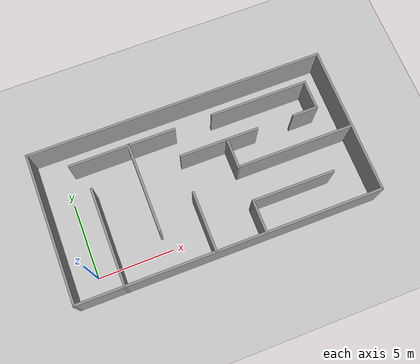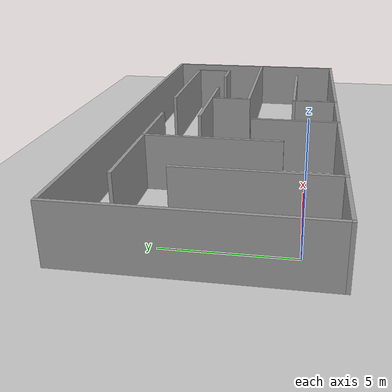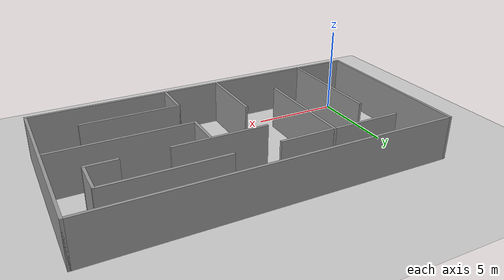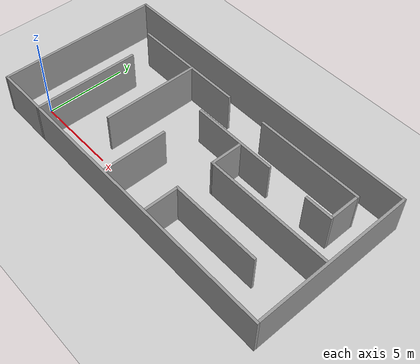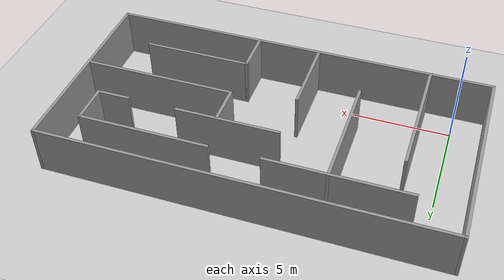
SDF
<sdf version="1.7">
 <world name="default">
  <light name="sun" type="directional">
   <pose>0 0 10 0 -0 0</pose>
   <diffuse>0.8 0.8 0.8 1</diffuse>
   <specular>0.2 0.2 0.2 1</specular>
   <attenuation>
    <range>1000</range>
    <constant>0.9</constant>
    <linear>0.01</linear>
    <quadratic>0.001</quadratic>
   </attenuation>
   <direction>-0.5 0.1 -0.9</direction>
   <spot><inner_angle>0</inner_angle><outer_angle>0</outer_angle><falloff>0</falloff></spot>
  </light>
  <model name="ground_plane">
   <static>1</static>
   <link name="link">
    <collision name="collision">
     <geometry><plane><normal>0 0 1</normal><size>100 100</size></plane></geometry>
     <surface>
      <contact><collide_bitmask>65535</collide_bitmask></contact>
      <friction><ode><mu>100</mu><mu2>50</mu2></ode></friction>
     </surface>
    </collision>
    <visual name="visual">
     <cast_shadows>0</cast_shadows>
     <geometry><plane><normal>0 0 1</normal><size>100 100</size></plane></geometry>
     <material>
      <script><uri>file://media/materials/scripts/gazebo.material</uri><name>Gazebo/Grey</name></script>
     </material>
    </visual>
   </link>
  </model>
  <gravity>0 0 -9.8</gravity>
  <magnetic_field>6e-06 2.3e-05 -4.2e-05</magnetic_field>
  <atmosphere type="adiabatic"/>
  <physics type="ode">
   <max_step_size>0.001</max_step_size>
   <real_time_factor>1</real_time_factor>
   <real_time_update_rate>1000</real_time_update_rate>
  </physics>
  <scene><ambient>0.4 0.4 0.4 1</ambient><background>0.7 0.7 0.7 1</background><shadows>1</shadows></scene>
  <audio><device>default</device></audio>
  <spherical_coordinates>
   <surface_model>EARTH_WGS84</surface_model>
   <latitude_deg>0</latitude_deg>
   <longitude_deg>0</longitude_deg>
   <elevation>0</elevation>
   <heading_deg>0</heading_deg>
  </spherical_coordinates>
  <model name="room1">
   <link name="Wall_0">
    <pose>0 4.5075 0 0 -0 0</pose>
    <visual name="Wall_0_Visual">
     <pose>0 0 1.25 0 -0 0</pose>
     <geometry><box><size>20 0.15 2.5</size></box></geometry>
     <material>
      <script><uri>file://media/materials/scripts/gazebo.material</uri><name>Gazebo/Grey</name></script>
      <ambient>1 1 1 1</ambient>
      <shader type="pixel"/>
     </material>
     <meta><layer>0</layer></meta>
    </visual>
    <collision name="Wall_0_Collision">
     <pose>0 0 1.25 0 -0 0</pose>
     <geometry><box><size>20 0.15 2.5</size></box></geometry>
     <surface>
      <friction>
       <ode><mu>1</mu><mu2>1</mu2><fdir1>0 0 0</fdir1><slip1>0</slip1><slip2>0</slip2></ode>
       <torsional>
        <coefficient>1</coefficient>
        <patch_radius>0</patch_radius>
        <surface_radius>0</surface_radius>
        <use_patch_radius>1</use_patch_radius>
        <ode><slip>0</slip></ode>
       </torsional>
      </friction>
      <bounce><restitution_coefficient>0</restitution_coefficient><threshold>1e+06</threshold></bounce>
      <contact>
       <collide_without_contact>0</collide_without_contact>
       <collide_without_contact_bitmask>1</collide_without_contact_bitmask>
       <collide_bitmask>1</collide_bitmask>
       <ode>
        <soft_cfm>0</soft_cfm>
        <soft_erp>0.2</soft_erp>
        <kp>1e+13</kp>
        <kd>1</kd>
        <max_vel>0.01</max_vel>
        <min_depth>0</min_depth>
       </ode>
       <bullet>
        <split_impulse>1</split_impulse>
        <split_impulse_penetration_threshold>-0.01</split_impulse_penetration_threshold>
        <soft_cfm>0</soft_cfm>
        <soft_erp>0.2</soft_erp>
        <kp>1e+13</kp>
        <kd>1</kd>
       </bullet>
      </contact>
     </surface>
    </collision>
   </link>
   <link name="Wall_1">
    <pose>9.925 -0.4175 0 0 0 -1.5708</pose>
    <visual name="Wall_1_Visual">
     <pose>0 0 1.25 0 -0 0</pose>
     <geometry><box><size>10 0.15 2.5</size></box></geometry>
     <material>
      <script><uri>file://media/materials/scripts/gazebo.material</uri><name>Gazebo/Grey</name></script>
      <ambient>1 1 1 1</ambient>
      <shader type="pixel"/>
     </material>
     <meta><layer>0</layer></meta>
    </visual>
    <collision name="Wall_1_Collision">
     <pose>0 0 1.25 0 -0 0</pose>
     <geometry><box><size>10 0.15 2.5</size></box></geometry>
     <surface>
      <friction>
       <ode><mu>1</mu><mu2>1</mu2><fdir1>0 0 0</fdir1><slip1>0</slip1><slip2>0</slip2></ode>
       <torsional>
        <coefficient>1</coefficient>
        <patch_radius>0</patch_radius>
        <surface_radius>0</surface_radius>
        <use_patch_radius>1</use_patch_radius>
        <ode><slip>0</slip></ode>
       </torsional>
      </friction>
      <bounce><restitution_coefficient>0</restitution_coefficient><threshold>1e+06</threshold></bounce>
      <contact>
       <collide_without_contact>0</collide_without_contact>
       <collide_without_contact_bitmask>1</collide_without_contact_bitmask>
       <collide_bitmask>1</collide_bitmask>
       <ode>
        <soft_cfm>0</soft_cfm>
        <soft_erp>0.2</soft_erp>
        <kp>1e+13</kp>
        <kd>1</kd>
        <max_vel>0.01</max_vel>
        <min_depth>0</min_depth>
       </ode>
       <bullet>
        <split_impulse>1</split_impulse>
        <split_impulse_penetration_threshold>-0.01</split_impulse_penetration_threshold>
        <soft_cfm>0</soft_cfm>
        <soft_erp>0.2</soft_erp>
        <kp>1e+13</kp>
        <kd>1</kd>
       </bullet>
      </contact>
     </surface>
    </collision>
   </link>
   <link name="Wall_10">
    <pose>1.665 1.0675 0 0 -0 3.14159</pose>
    <visual name="Wall_10_Visual">
     <pose>0 0 1.25 0 -0 0</pose>
     <geometry><box><size>5.25 0.15 2.5</size></box></geometry>
     <material>
      <script><uri>file://media/materials/scripts/gazebo.material</uri><name>Gazebo/Grey</name></script>
      <ambient>1 1 1 1</ambient>
      <shader type="pixel"/>
     </material>
     <meta><layer>0</layer></meta>
    </visual>
    <collision name="Wall_10_Collision">
     <pose>0 0 1.25 0 -0 0</pose>
     <geometry><box><size>5.25 0.15 2.5</size></box></geometry>
     <surface>
      <friction>
       <ode><mu>1</mu><mu2>1</mu2><fdir1>0 0 0</fdir1><slip1>0</slip1><slip2>0</slip2></ode>
       <torsional>
        <coefficient>1</coefficient>
        <patch_radius>0</patch_radius>
        <surface_radius>0</surface_radius>
        <use_patch_radius>1</use_patch_radius>
        <ode><slip>0</slip></ode>
       </torsional>
      </friction>
      <bounce><restitution_coefficient>0</restitution_coefficient><threshold>1e+06</threshold></bounce>
      <contact>
       <collide_without_contact>0</collide_without_contact>
       <collide_without_contact_bitmask>1</collide_without_contact_bitmask>
       <collide_bitmask>1</collide_bitmask>
       <ode>
        <soft_cfm>0</soft_cfm>
        <soft_erp>0.2</soft_erp>
        <kp>1e+13</kp>
        <kd>1</kd>
        <max_vel>0.01</max_vel>
        <min_depth>0</min_depth>
       </ode>
       <bullet>
        <split_impulse>1</split_impulse>
        <split_impulse_penetration_threshold>-0.01</split_impulse_penetration_threshold>
        <soft_cfm>0</soft_cfm>
        <soft_erp>0.2</soft_erp>
        <kp>1e+13</kp>
        <kd>1</kd>
       </bullet>
      </contact>
     </surface>
    </collision>
   </link>
   <link name="Wall_12">
    <pose>-3.745 -0.0075 0 0 0 -1.5708</pose>
    <visual name="Wall_12_Visual">
     <pose>0 0 1.25 0 -0 0</pose>
     <geometry><box><size>6 0.15 2.5</size></box></geometry>
     <material>
      <script><uri>file://media/materials/scripts/gazebo.material</uri><name>Gazebo/Grey</name></script>
      <ambient>1 1 1 1</ambient>
      <shader type="pixel"/>
     </material>
     <meta><layer>0</layer></meta>
    </visual>
    <collision name="Wall_12_Collision">
     <pose>0 0 1.25 0 -0 0</pose>
     <geometry><box><size>6 0.15 2.5</size></box></geometry>
     <surface>
      <friction>
       <ode><mu>1</mu><mu2>1</mu2><fdir1>0 0 0</fdir1><slip1>0</slip1><slip2>0</slip2></ode>
       <torsional>
        <coefficient>1</coefficient>
        <patch_radius>0</patch_radius>
        <surface_radius>0</surface_radius>
        <use_patch_radius>1</use_patch_radius>
        <ode><slip>0</slip></ode>
       </torsional>
      </friction>
      <bounce><restitution_coefficient>0</restitution_coefficient><threshold>1e+06</threshold></bounce>
      <contact>
       <collide_without_contact>0</collide_without_contact>
       <collide_without_contact_bitmask>1</collide_without_contact_bitmask>
       <collide_bitmask>1</collide_bitmask>
       <ode>
        <soft_cfm>0</soft_cfm>
        <soft_erp>0.2</soft_erp>
        <kp>1e+13</kp>
        <kd>1</kd>
        <max_vel>0.01</max_vel>
        <min_depth>0</min_depth>
       </ode>
       <bullet>
        <split_impulse>1</split_impulse>
        <split_impulse_penetration_threshold>-0.01</split_impulse_penetration_threshold>
        <soft_cfm>0</soft_cfm>
        <soft_erp>0.2</soft_erp>
        <kp>1e+13</kp>
        <kd>1</kd>
       </bullet>
      </contact>
     </surface>
    </collision>
   </link>
   <link name="Wall_14">
    <pose>-6.805 -2.1775 0 0 0 -1.5708</pose>
    <visual name="Wall_14_Visual">
     <pose>0 0 1.25 0 -0 0</pose>
     <geometry><box><size>6.5 0.15 2.5</size></box></geometry>
     <material>
      <script><uri>file://media/materials/scripts/gazebo.material</uri><name>Gazebo/Grey</name></script>
      <ambient>1 1 1 1</ambient>
      <shader type="pixel"/>
     </material>
     <meta><layer>0</layer></meta>
    </visual>
    <collision name="Wall_14_Collision">
     <pose>0 0 1.25 0 -0 0</pose>
     <geometry><box><size>6.5 0.15 2.5</size></box></geometry>
     <surface>
      <friction>
       <ode><mu>1</mu><mu2>1</mu2><fdir1>0 0 0</fdir1><slip1>0</slip1><slip2>0</slip2></ode>
       <torsional>
        <coefficient>1</coefficient>
        <patch_radius>0</patch_radius>
        <surface_radius>0</surface_radius>
        <use_patch_radius>1</use_patch_radius>
        <ode><slip>0</slip></ode>
       </torsional>
      </friction>
      <bounce><restitution_coefficient>0</restitution_coefficient><threshold>1e+06</threshold></bounce>
      <contact>
       <collide_without_contact>0</collide_without_contact>
       <collide_without_contact_bitmask>1</collide_without_contact_bitmask>
       <collide_bitmask>1</collide_bitmask>
       <ode>
        <soft_cfm>0</soft_cfm>
        <soft_erp>0.2</soft_erp>
        <kp>1e+13</kp>
        <kd>1</kd>
        <max_vel>0.01</max_vel>
        <min_depth>0</min_depth>
       </ode>
       <bullet>
        <split_impulse>1</split_impulse>
        <split_impulse_penetration_threshold>-0.01</split_impulse_penetration_threshold>
        <soft_cfm>0</soft_cfm>
        <soft_erp>0.2</soft_erp>
        <kp>1e+13</kp>
        <kd>1</kd>
       </bullet>
      </contact>
     </surface>
    </collision>
   </link>
   <link name="Wall_16">
    <pose>2.195 0.0325 0 0 0 -1.5708</pose>
    <visual name="Wall_16_Visual">
     <pose>0 0 1.25 0 -0 0</pose>
     <geometry><box><size>2 0.15 2.5</size></box></geometry>
     <material>
      <script><uri>file://media/materials/scripts/gazebo.material</uri><name>Gazebo/Grey</name></script>
      <ambient>1 1 1 1</ambient>
      <shader type="pixel"/>
     </material>
     <meta><layer>0</layer></meta>
    </visual>
    <collision name="Wall_16_Collision">
     <pose>0 0 1.25 0 -0 0</pose>
     <geometry><box><size>2 0.15 2.5</size></box></geometry>
     <surface>
      <friction>
       <ode><mu>1</mu><mu2>1</mu2><fdir1>0 0 0</fdir1><slip1>0</slip1><slip2>0</slip2></ode>
       <torsional>
        <coefficient>1</coefficient>
        <patch_radius>0</patch_radius>
        <surface_radius>0</surface_radius>
        <use_patch_radius>1</use_patch_radius>
        <ode><slip>0</slip></ode>
       </torsional>
      </friction>
      <bounce><restitution_coefficient>0</restitution_coefficient><threshold>1e+06</threshold></bounce>
      <contact>
       <collide_without_contact>0</collide_without_contact>
       <collide_without_contact_bitmask>1</collide_without_contact_bitmask>
       <collide_bitmask>1</collide_bitmask>
       <ode>
        <soft_cfm>0</soft_cfm>
        <soft_erp>0.2</soft_erp>
        <kp>1e+13</kp>
        <kd>1</kd>
        <max_vel>0.01</max_vel>
        <min_depth>0</min_depth>
       </ode>
       <bullet>
        <split_impulse>1</split_impulse>
        <split_impulse_penetration_threshold>-0.01</split_impulse_penetration_threshold>
        <soft_cfm>0</soft_cfm>
        <soft_erp>0.2</soft_erp>
        <kp>1e+13</kp>
        <kd>1</kd>
       </bullet>
      </contact>
     </surface>
    </collision>
   </link>
   <link name="Wall_18">
    <pose>2.225 -4.2825 0 0 0 -1.5708</pose>
    <visual name="Wall_18_Visual">
     <pose>0 0 1.25 0 -0 0</pose>
     <geometry><box><size>2.25 0.15 2.5</size></box></geometry>
     <material>
      <script><uri>file://media/materials/scripts/gazebo.material</uri><name>Gazebo/Grey</name></script>
      <ambient>1 1 1 1</ambient>
      <shader type="pixel"/>
     </material>
     <meta><layer>0</layer></meta>
    </visual>
    <collision name="Wall_18_Collision">
     <pose>0 0 1.25 0 -0 0</pose>
     <geometry><box><size>2.25 0.15 2.5</size></box></geometry>
     <surface>
      <friction>
       <ode><mu>1</mu><mu2>1</mu2><fdir1>0 0 0</fdir1><slip1>0</slip1><slip2>0</slip2></ode>
       <torsional>
        <coefficient>1</coefficient>
        <patch_radius>0</patch_radius>
        <surface_radius>0</surface_radius>
        <use_patch_radius>1</use_patch_radius>
        <ode><slip>0</slip></ode>
       </torsional>
      </friction>
      <bounce><restitution_coefficient>0</restitution_coefficient><threshold>1e+06</threshold></bounce>
      <contact>
       <collide_without_contact>0</collide_without_contact>
       <collide_without_contact_bitmask>1</collide_without_contact_bitmask>
       <collide_bitmask>1</collide_bitmask>
       <ode>
        <soft_cfm>0</soft_cfm>
        <soft_erp>0.2</soft_erp>
        <kp>1e+13</kp>
        <kd>1</kd>
        <max_vel>0.01</max_vel>
        <min_depth>0</min_depth>
       </ode>
       <bullet>
        <split_impulse>1</split_impulse>
        <split_impulse_penetration_threshold>-0.01</split_impulse_penetration_threshold>
        <soft_cfm>0</soft_cfm>
        <soft_erp>0.2</soft_erp>
        <kp>1e+13</kp>
        <kd>1</kd>
       </bullet>
      </contact>
     </surface>
    </collision>
   </link>
   <link name="Wall_2">
    <pose>0 -5.3425 0 0 -0 3.14159</pose>
    <visual name="Wall_2_Visual">
     <pose>0 0 1.25 0 -0 0</pose>
     <geometry><box><size>20 0.15 2.5</size></box></geometry>
     <material>
      <script><uri>file://media/materials/scripts/gazebo.material</uri><name>Gazebo/Grey</name></script>
      <ambient>1 1 1 1</ambient>
      <shader type="pixel"/>
     </material>
     <meta><layer>0</layer></meta>
    </visual>
    <collision name="Wall_2_Collision">
     <pose>0 0 1.25 0 -0 0</pose>
     <geometry><box><size>20 0.15 2.5</size></box></geometry>
     <surface>
      <friction>
       <ode><mu>1</mu><mu2>1</mu2><fdir1>0 0 0</fdir1><slip1>0</slip1><slip2>0</slip2></ode>
       <torsional>
        <coefficient>1</coefficient>
        <patch_radius>0</patch_radius>
        <surface_radius>0</surface_radius>
        <use_patch_radius>1</use_patch_radius>
        <ode><slip>0</slip></ode>
       </torsional>
      </friction>
      <bounce><restitution_coefficient>0</restitution_coefficient><threshold>1e+06</threshold></bounce>
      <contact>
       <collide_without_contact>0</collide_without_contact>
       <collide_without_contact_bitmask>1</collide_without_contact_bitmask>
       <collide_bitmask>1</collide_bitmask>
       <ode>
        <soft_cfm>0</soft_cfm>
        <soft_erp>0.2</soft_erp>
        <kp>1e+13</kp>
        <kd>1</kd>
        <max_vel>0.01</max_vel>
        <min_depth>0</min_depth>
       </ode>
       <bullet>
        <split_impulse>1</split_impulse>
        <split_impulse_penetration_threshold>-0.01</split_impulse_penetration_threshold>
        <soft_cfm>0</soft_cfm>
        <soft_erp>0.2</soft_erp>
        <kp>1e+13</kp>
        <kd>1</kd>
       </bullet>
      </contact>
     </surface>
    </collision>
   </link>
   <link name="Wall_20">
    <pose>5.995 -0.8925 0 0 -0 0</pose>
    <visual name="Wall_20_Visual">
     <pose>0 0 1.25 0 -0 0</pose>
     <geometry><box><size>7.75 0.15 2.5</size></box></geometry>
     <material>
      <script><uri>file://media/materials/scripts/gazebo.material</uri><name>Gazebo/Grey</name></script>
      <ambient>1 1 1 1</ambient>
      <shader type="pixel"/>
     </material>
     <meta><layer>0</layer></meta>
    </visual>
    <collision name="Wall_20_Collision">
     <pose>0 0 1.25 0 -0 0</pose>
     <geometry><box><size>7.75 0.15 2.5</size></box></geometry>
     <surface>
      <friction>
       <ode><mu>1</mu><mu2>1</mu2><fdir1>0 0 0</fdir1><slip1>0</slip1><slip2>0</slip2></ode>
       <torsional>
        <coefficient>1</coefficient>
        <patch_radius>0</patch_radius>
        <surface_radius>0</surface_radius>
        <use_patch_radius>1</use_patch_radius>
        <ode><slip>0</slip></ode>
       </torsional>
      </friction>
      <bounce><restitution_coefficient>0</restitution_coefficient><threshold>1e+06</threshold></bounce>
      <contact>
       <collide_without_contact>0</collide_without_contact>
       <collide_without_contact_bitmask>1</collide_without_contact_bitmask>
       <collide_bitmask>1</collide_bitmask>
       <ode>
        <soft_cfm>0</soft_cfm>
        <soft_erp>0.2</soft_erp>
        <kp>1e+13</kp>
        <kd>1</kd>
        <max_vel>0.01</max_vel>
        <min_depth>0</min_depth>
       </ode>
       <bullet>
        <split_impulse>1</split_impulse>
        <split_impulse_penetration_threshold>-0.01</split_impulse_penetration_threshold>
        <soft_cfm>0</soft_cfm>
        <soft_erp>0.2</soft_erp>
        <kp>1e+13</kp>
        <kd>1</kd>
       </bullet>
      </contact>
     </surface>
    </collision>
   </link>
   <link name="Wall_22">
    <pose>4.9 -3.2325 0 0 -0 0</pose>
    <visual name="Wall_22_Visual">
     <pose>0 0 1.25 0 -0 0</pose>
     <geometry><box><size>5.5 0.15 2.5</size></box></geometry>
     <material>
      <script><uri>file://media/materials/scripts/gazebo.material</uri><name>Gazebo/Grey</name></script>
      <ambient>1 1 1 1</ambient>
      <shader type="pixel"/>
     </material>
     <meta><layer>0</layer></meta>
    </visual>
    <collision name="Wall_22_Collision">
     <pose>0 0 1.25 0 -0 0</pose>
     <geometry><box><size>5.5 0.15 2.5</size></box></geometry>
     <surface>
      <friction>
       <ode><mu>1</mu><mu2>1</mu2><fdir1>0 0 0</fdir1><slip1>0</slip1><slip2>0</slip2></ode>
       <torsional>
        <coefficient>1</coefficient>
        <patch_radius>0</patch_radius>
        <surface_radius>0</surface_radius>
        <use_patch_radius>1</use_patch_radius>
        <ode><slip>0</slip></ode>
       </torsional>
      </friction>
      <bounce><restitution_coefficient>0</restitution_coefficient><threshold>1e+06</threshold></bounce>
      <contact>
       <collide_without_contact>0</collide_without_contact>
       <collide_without_contact_bitmask>1</collide_without_contact_bitmask>
       <collide_bitmask>1</collide_bitmask>
       <ode>
        <soft_cfm>0</soft_cfm>
        <soft_erp>0.2</soft_erp>
        <kp>1e+13</kp>
        <kd>1</kd>
        <max_vel>0.01</max_vel>
        <min_depth>0</min_depth>
       </ode>
       <bullet>
        <split_impulse>1</split_impulse>
        <split_impulse_penetration_threshold>-0.01</split_impulse_penetration_threshold>
        <soft_cfm>0</soft_cfm>
        <soft_erp>0.2</soft_erp>
        <kp>1e+13</kp>
        <kd>1</kd>
       </bullet>
      </contact>
     </surface>
    </collision>
   </link>
   <link name="Wall_24">
    <pose>-1.015 -3.3675 0 0 -0 1.5708</pose>
    <visual name="Wall_24_Visual">
     <pose>0 0 1.25 0 -0 0</pose>
     <geometry><box><size>4 0.15 2.5</size></box></geometry>
     <material>
      <script><uri>file://media/materials/scripts/gazebo.material</uri><name>Gazebo/Grey</name></script>
      <ambient>1 1 1 1</ambient>
      <shader type="pixel"/>
     </material>
     <meta><layer>0</layer></meta>
    </visual>
    <collision name="Wall_24_Collision">
     <pose>0 0 1.25 0 -0 0</pose>
     <geometry><box><size>4 0.15 2.5</size></box></geometry>
     <surface>
      <friction>
       <ode><mu>1</mu><mu2>1</mu2><fdir1>0 0 0</fdir1><slip1>0</slip1><slip2>0</slip2></ode>
       <torsional>
        <coefficient>1</coefficient>
        <patch_radius>0</patch_radius>
        <surface_radius>0</surface_radius>
        <use_patch_radius>1</use_patch_radius>
        <ode><slip>0</slip></ode>
       </torsional>
      </friction>
      <bounce><restitution_coefficient>0</restitution_coefficient><threshold>1e+06</threshold></bounce>
      <contact>
       <collide_without_contact>0</collide_without_contact>
       <collide_without_contact_bitmask>1</collide_without_contact_bitmask>
       <collide_bitmask>1</collide_bitmask>
       <ode>
        <soft_cfm>0</soft_cfm>
        <soft_erp>0.2</soft_erp>
        <kp>1e+13</kp>
        <kd>1</kd>
        <max_vel>0.01</max_vel>
        <min_depth>0</min_depth>
       </ode>
       <bullet>
        <split_impulse>1</split_impulse>
        <split_impulse_penetration_threshold>-0.01</split_impulse_penetration_threshold>
        <soft_cfm>0</soft_cfm>
        <soft_erp>0.2</soft_erp>
        <kp>1e+13</kp>
        <kd>1</kd>
       </bullet>
      </contact>
     </surface>
    </collision>
   </link>
   <link name="Wall_3">
    <pose>-9.925 -0.4175 0 0 -0 1.5708</pose>
    <visual name="Wall_3_Visual">
     <pose>0 0 1.25 0 -0 0</pose>
     <geometry><box><size>10 0.15 2.5</size></box></geometry>
     <material>
      <script><uri>file://media/materials/scripts/gazebo.material</uri><name>Gazebo/Grey</name></script>
      <ambient>1 1 1 1</ambient>
      <shader type="pixel"/>
     </material>
     <meta><layer>0</layer></meta>
    </visual>
    <collision name="Wall_3_Collision">
     <pose>0 0 1.25 0 -0 0</pose>
     <geometry><box><size>10 0.15 2.5</size></box></geometry>
     <surface>
      <friction>
       <ode><mu>1</mu><mu2>1</mu2><fdir1>0 0 0</fdir1><slip1>0</slip1><slip2>0</slip2></ode>
       <torsional>
        <coefficient>1</coefficient>
        <patch_radius>0</patch_radius>
        <surface_radius>0</surface_radius>
        <use_patch_radius>1</use_patch_radius>
        <ode><slip>0</slip></ode>
       </torsional>
      </friction>
      <bounce><restitution_coefficient>0</restitution_coefficient><threshold>1e+06</threshold></bounce>
      <contact>
       <collide_without_contact>0</collide_without_contact>
       <collide_without_contact_bitmask>1</collide_without_contact_bitmask>
       <collide_bitmask>1</collide_bitmask>
       <ode>
        <soft_cfm>0</soft_cfm>
        <soft_erp>0.2</soft_erp>
        <kp>1e+13</kp>
        <kd>1</kd>
        <max_vel>0.01</max_vel>
        <min_depth>0</min_depth>
       </ode>
       <bullet>
        <split_impulse>1</split_impulse>
        <split_impulse_penetration_threshold>-0.01</split_impulse_penetration_threshold>
        <soft_cfm>0</soft_cfm>
        <soft_erp>0.2</soft_erp>
        <kp>1e+13</kp>
        <kd>1</kd>
       </bullet>
      </contact>
     </surface>
    </collision>
   </link>
   <link name="Wall_6">
    <pose>-4.1596 2.9075 0 0 -0 0</pose>
    <inertial>
     <inertia><ixx>0</ixx><ixy>0</ixy><ixz>0</ixz><iyy>0</iyy><iyz>0</iyz><izz>0</izz></inertia>
     <mass>0</mass>
    </inertial>
    <visual name="Wall_6_Visual">
     <pose>0 0 1.25 0 -0 0</pose>
     <geometry><box><size>7.0716 0.15 2.5</size></box></geometry>
     <material>
      <script><uri>file://media/materials/scripts/gazebo.material</uri><name>Gazebo/Grey</name></script>
      <ambient>1 1 1 1</ambient>
      <shader type="pixel"/>
     </material>
     <meta><layer>0</layer></meta>
    </visual>
    <collision name="Wall_6_Collision">
     <pose>0 0 1.25 0 -0 0</pose>
     <geometry><box><size>7.0716 0.15 2.5</size></box></geometry>
     <surface>
      <friction>
       <ode><mu>1</mu><mu2>1</mu2><fdir1>0 0 0</fdir1><slip1>0</slip1><slip2>0</slip2></ode>
       <torsional>
        <coefficient>1</coefficient>
        <patch_radius>0</patch_radius>
        <surface_radius>0</surface_radius>
        <use_patch_radius>1</use_patch_radius>
        <ode><slip>0</slip></ode>
       </torsional>
      </friction>
      <bounce><restitution_coefficient>0</restitution_coefficient><threshold>1e+06</threshold></bounce>
      <contact>
       <collide_without_contact>0</collide_without_contact>
       <collide_without_contact_bitmask>1</collide_without_contact_bitmask>
       <collide_bitmask>1</collide_bitmask>
       <ode>
        <soft_cfm>0</soft_cfm>
        <soft_erp>0.2</soft_erp>
        <kp>1e+13</kp>
        <kd>1</kd>
        <max_vel>0.01</max_vel>
        <min_depth>0</min_depth>
       </ode>
       <bullet>
        <split_impulse>1</split_impulse>
        <split_impulse_penetration_threshold>-0.01</split_impulse_penetration_threshold>
        <soft_cfm>0</soft_cfm>
        <soft_erp>0.2</soft_erp>
        <kp>1e+13</kp>
        <kd>1</kd>
       </bullet>
      </contact>
     </surface>
    </collision>
   </link>
   <link name="Wall_6_clone">
    <pose>5.13571 2.95279 0 0 -0 0</pose>
    <inertial>
     <inertia><ixx>0</ixx><ixy>0</ixy><ixz>0</ixz><iyy>0</iyy><iyz>0</iyz><izz>0</izz></inertia>
     <mass>0</mass>
    </inertial>
    <visual name="Wall_6_Visual">
     <pose>0 0 1.25 0 -0 0</pose>
     <geometry><box><size>6.57055 0.15 2.5</size></box></geometry>
     <material>
      <script><uri>file://media/materials/scripts/gazebo.material</uri><name>Gazebo/Grey</name></script>
      <ambient>1 1 1 1</ambient>
      <shader type="pixel"/>
     </material>
     <meta><layer>0</layer></meta>
    </visual>
    <collision name="Wall_6_Collision">
     <pose>0 0 1.25 0 -0 0</pose>
     <geometry><box><size>6.57055 0.15 2.5</size></box></geometry>
     <surface>
      <friction>
       <ode><mu>1</mu><mu2>1</mu2><fdir1>0 0 0</fdir1><slip1>0</slip1><slip2>0</slip2></ode>
       <torsional>
        <coefficient>1</coefficient>
        <patch_radius>0</patch_radius>
        <surface_radius>0</surface_radius>
        <use_patch_radius>1</use_patch_radius>
        <ode><slip>0</slip></ode>
       </torsional>
      </friction>
      <bounce><restitution_coefficient>0</restitution_coefficient><threshold>1e+06</threshold></bounce>
      <contact>
       <collide_without_contact>0</collide_without_contact>
       <collide_without_contact_bitmask>1</collide_without_contact_bitmask>
       <collide_bitmask>1</collide_bitmask>
       <ode>
        <soft_cfm>0</soft_cfm>
        <soft_erp>0.2</soft_erp>
        <kp>1e+13</kp>
        <kd>1</kd>
        <max_vel>0.01</max_vel>
        <min_depth>0</min_depth>
       </ode>
       <bullet>
        <split_impulse>1</split_impulse>
        <split_impulse_penetration_threshold>-0.01</split_impulse_penetration_threshold>
        <soft_cfm>0</soft_cfm>
        <soft_erp>0.2</soft_erp>
        <kp>1e+13</kp>
        <kd>1</kd>
       </bullet>
      </contact>
     </surface>
    </collision>
   </link>
   <link name="Wall_7">
    <pose>8.345 1.9925 0 0 0 -1.5708</pose>
    <visual name="Wall_7_Visual">
     <pose>0 0 1.25 0 -0 0</pose>
     <geometry><box><size>2 0.15 2.5</size></box></geometry>
     <material>
      <script><uri>file://media/materials/scripts/gazebo.material</uri><name>Gazebo/Grey</name></script>
      <ambient>1 1 1 1</ambient>
      <shader type="pixel"/>
     </material>
     <meta><layer>0</layer></meta>
    </visual>
    <collision name="Wall_7_Collision">
     <pose>0 0 1.25 0 -0 0</pose>
     <geometry><box><size>2 0.15 2.5</size></box></geometry>
     <surface>
      <friction>
       <ode><mu>1</mu><mu2>1</mu2><fdir1>0 0 0</fdir1><slip1>0</slip1><slip2>0</slip2></ode>
       <torsional>
        <coefficient>1</coefficient>
        <patch_radius>0</patch_radius>
        <surface_radius>0</surface_radius>
        <use_patch_radius>1</use_patch_radius>
        <ode><slip>0</slip></ode>
       </torsional>
      </friction>
      <bounce><restitution_coefficient>0</restitution_coefficient><threshold>1e+06</threshold></bounce>
      <contact>
       <collide_without_contact>0</collide_without_contact>
       <collide_without_contact_bitmask>1</collide_without_contact_bitmask>
       <collide_bitmask>1</collide_bitmask>
       <ode>
        <soft_cfm>0</soft_cfm>
        <soft_erp>0.2</soft_erp>
        <kp>1e+13</kp>
        <kd>1</kd>
        <max_vel>0.01</max_vel>
        <min_depth>0</min_depth>
       </ode>
       <bullet>
        <split_impulse>1</split_impulse>
        <split_impulse_penetration_threshold>-0.01</split_impulse_penetration_threshold>
        <soft_cfm>0</soft_cfm>
        <soft_erp>0.2</soft_erp>
        <kp>1e+13</kp>
        <kd>1</kd>
       </bullet>
      </contact>
     </surface>
    </collision>
   </link>
   <link name="Wall_8">
    <pose>7.565 1.0575 0 0 -0 3.14159</pose>
    <visual name="Wall_8_Visual">
     <pose>0 0 1.25 0 -0 0</pose>
     <geometry><box><size>1.71003 0.15 2.5</size></box></geometry>
     <material>
      <script><uri>file://media/materials/scripts/gazebo.material</uri><name>Gazebo/Grey</name></script>
      <ambient>1 1 1 1</ambient>
      <shader type="pixel"/>
     </material>
     <meta><layer>0</layer></meta>
    </visual>
    <collision name="Wall_8_Collision">
     <pose>0 0 1.25 0 -0 0</pose>
     <geometry><box><size>1.71003 0.15 2.5</size></box></geometry>
     <surface>
      <friction>
       <ode><mu>1</mu><mu2>1</mu2><fdir1>0 0 0</fdir1><slip1>0</slip1><slip2>0</slip2></ode>
       <torsional>
        <coefficient>1</coefficient>
        <patch_radius>0</patch_radius>
        <surface_radius>0</surface_radius>
        <use_patch_radius>1</use_patch_radius>
        <ode><slip>0</slip></ode>
       </torsional>
      </friction>
      <bounce><restitution_coefficient>0</restitution_coefficient><threshold>1e+06</threshold></bounce>
      <contact>
       <collide_without_contact>0</collide_without_contact>
       <collide_without_contact_bitmask>1</collide_without_contact_bitmask>
       <collide_bitmask>1</collide_bitmask>
       <ode>
        <soft_cfm>0</soft_cfm>
        <soft_erp>0.2</soft_erp>
        <kp>1e+13</kp>
        <kd>1</kd>
        <max_vel>0.01</max_vel>
        <min_depth>0</min_depth>
       </ode>
       <bullet>
        <split_impulse>1</split_impulse>
        <split_impulse_penetration_threshold>-0.01</split_impulse_penetration_threshold>
        <soft_cfm>0</soft_cfm>
        <soft_erp>0.2</soft_erp>
        <kp>1e+13</kp>
        <kd>1</kd>
       </bullet>
      </contact>
     </surface>
    </collision>
   </link>
   <static>1</static>
   <pose>8.34671 3.9039 0 0 -0 0</pose>
  </model>
 </world>
</sdf>
